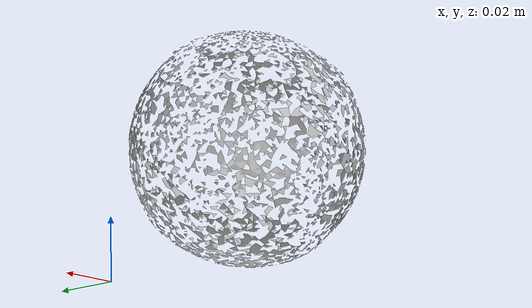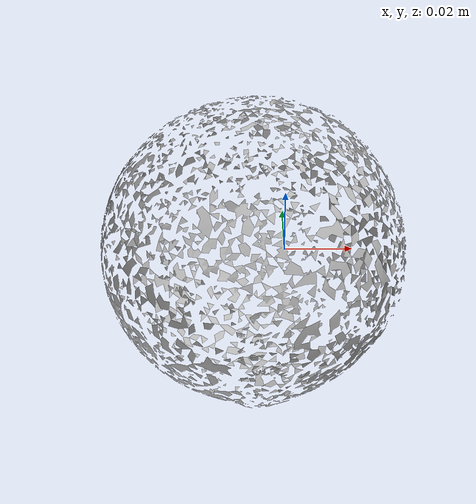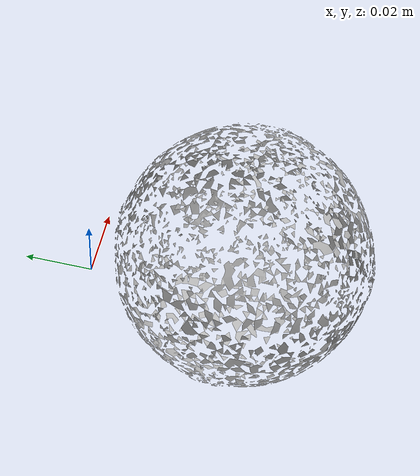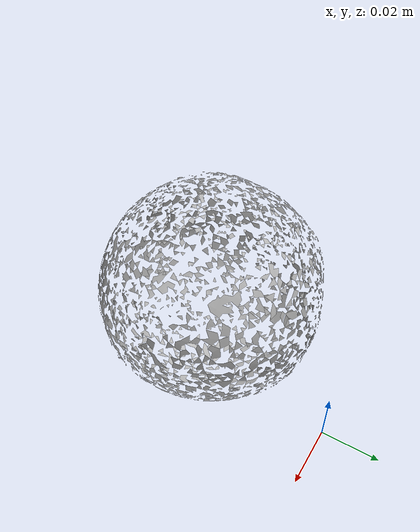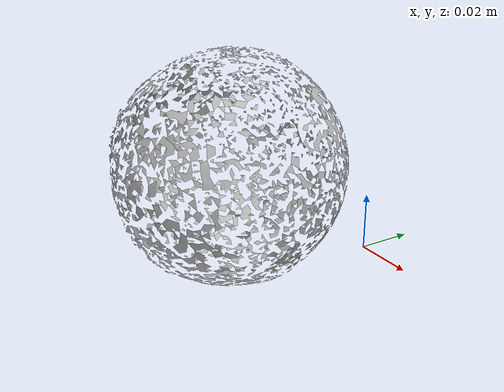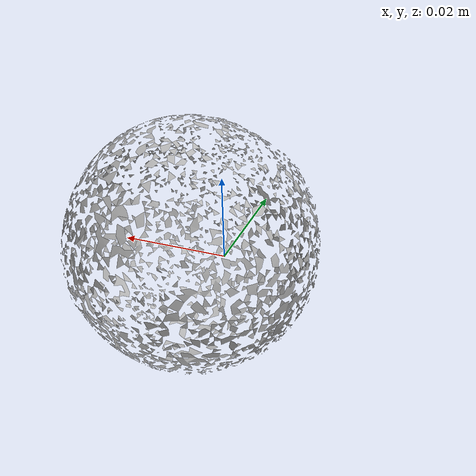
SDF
<?xml version='1.0'?>
<sdf version="1.4">
  <model name="baseball">
    <static>false</static>
    <link name="link">
      <inertial>
        <pose>-0.009947985025210358 -0.04811623557140466 0.03592664752018525 -0.18362772655473586 -0.6241102896769392 -1.492658442479467</pose>
        <mass>0.00020274709259390355</mass>
        <inertia>
          <ixx>1.0826522744418533e-07</ixx>
          <ixy>4.198136603109624e-24</ixy>
          <ixz>-2.8724905993778676e-23</ixz>
          <iyy>1.0766425403851136e-07</iyy>
          <iyz>3.349964655893214e-24</iyz>
          <izz>1.0729927220622785e-07</izz>
        </inertia>
      </inertial>
      <collision name="collision">
        <geometry>
          <mesh>
            <!-- Use a downsampled mesh for collisions -->
            <uri>model://055_baseball/downsampled.obj</uri>
	        </mesh>
        </geometry>
        <surface>
      </surface>
      </collision>
      <visual name="visual">
        <geometry>
          <mesh>
            <uri>model://055_baseball/google_16k/textured.obj</uri>
	        </mesh>
        </geometry>
        <material>
          <script>
            <uri>model://055_baseball/baseball.material</uri>
            <name>baseball</name>
          </script>
        </material>
      </visual>
    </link>
  </model>
</sdf>
